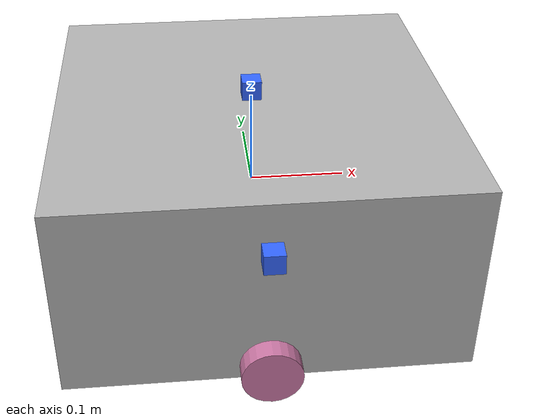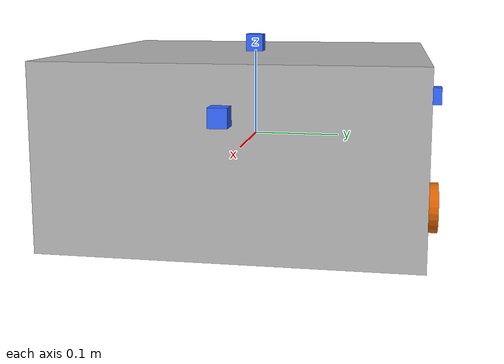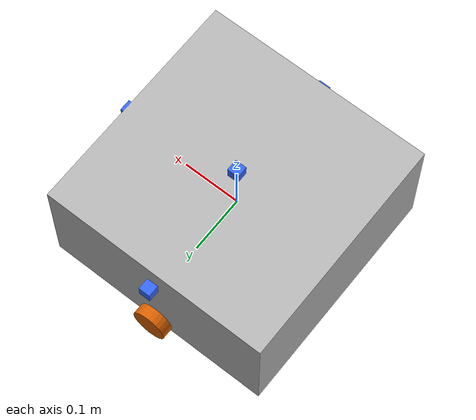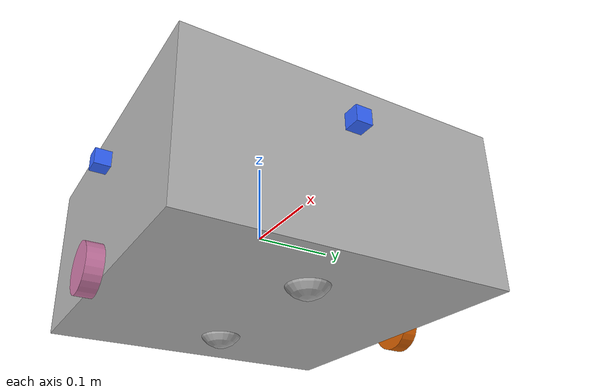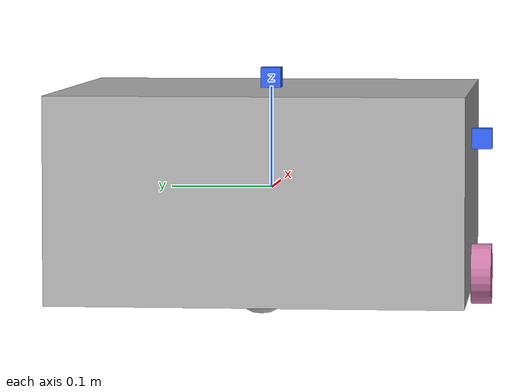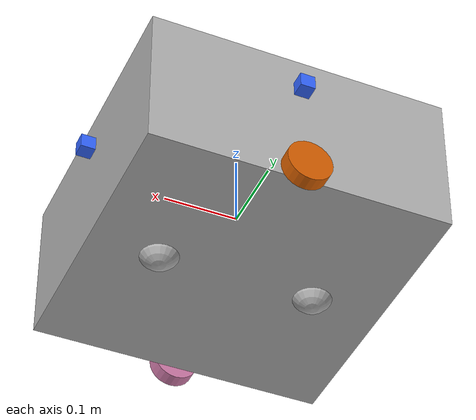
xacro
<?xml version="1.0"?>
<robot name="my_robot" xmlns:xacro="http://www.ros.org/wiki/xacro">

  <!-- Параметры -->
  <xacro:property name="base_length" value="0.4"/>
  <xacro:property name="base_width" value="0.4"/>
  <xacro:property name="base_height" value="0.2"/>

  <xacro:property name="wheel_radius" value="0.03"/>
  <xacro:property name="mass_base" value="5.00"/>
  <xacro:property name="wheel_width" value="0.02"/>
  <xacro:property name="wheel_y_offset" value="0.21"/>

  <material name="robot_blue">
    <color rgba="0.2 0.4 1 1"/>
  </material>
  <material name="robot_gray">
    <color rgba="0.7 0.7 0.7 1"/>
  </material>

  <!-- База -->
  <link name="base_link">
    <visual>
      <geometry>
        <box size="${base_length} ${base_width} ${base_height}"/>
      </geometry>
    <material name="robot_gray"/>
    </visual>
    <collision>
      <geometry>
        <box size="${base_length} ${base_width} ${base_height}"/>
      </geometry>
    </collision>

    <inertial>
      <origin xyz="0 0 0" rpy="0 0 0"/>
      <mass value="${mass_base}"/>
      <inertia
        ixx="0.0208"
        ixy="0.0"
        ixz="0.0"
        iyy="0.0283"
        iyz="0.0"
        izz="0.0417"/>
    </inertial>
  </link>

  <link name="base_footprint">
  </link>
  <joint name="base_joint" type="fixed">
    <parent link="base_link"/>
    <child link="base_footprint"/>
    <origin xyz="0.0 0.0 ${-(base_height/2 + wheel_radius/2)}" rpy="0 0 0"/>
  </joint>

  <!-- Макрос колеса -->
  <xacro:macro name="wheel" params="name y_offset">
    <link name="${name}">
      <visual>
        <geometry>
          <cylinder radius="${wheel_radius}" length="${wheel_width}"/>
        </geometry>
      </visual>

      <collision>
        <geometry>
          <cylinder radius="${wheel_radius}" length="${wheel_width}"/>
        </geometry>
      </collision>

      <inertial>
        <origin xyz="0 0 0" rpy="0 0 0"/>
        <mass value="0.2"/>
        <inertia
          ixx="0.00013"
          ixy="0.0"
          ixz="0.0"
          iyy="0.00013"
          iyz="0.0"
          izz="0.00025"/>
      </inertial>
    </link>

    <joint name="${name}_joint" type="continuous">
      <parent link="base_link"/>
      <child link="${name}"/>
      <origin xyz="0 ${y_offset} ${- base_height/2 + wheel_radius/2}" rpy="0 1.57 1.57"/>
      <axis xyz="0 0 1"/>
    </joint>
  </xacro:macro>

  <xacro:macro name="range_sensor_mount" params="name x y z roll pitch yaw topic_name">
  <link name="${name}">
    <visual>
      <geometry>
        <box size="0.02 0.02 0.02"/>
      </geometry>
      <material name="robot_blue"/>
    </visual>

    <collision>
      <geometry>
        <box size="0.02 0.02 0.02"/>
      </geometry>
    </collision>

    <inertial>
      <mass value="0.01"/>
      <inertia
        ixx="1e-6" ixy="0" ixz="0"
        iyy="1e-6" iyz="0"
        izz="1e-6"/>
    </inertial>
  </link>

  <joint name="${name}_joint" type="fixed">
    <parent link="base_link"/>
    <child link="${name}"/>
    <origin xyz="${x} ${y} ${z}" rpy="${roll} ${pitch} ${yaw}"/>
  </joint>
</xacro:macro>

  <xacro:macro name="support_wheel" params="name x y z">
    <link name="${name}">
      <visual>
        <geometry>
          <sphere radius="0.03"/>
        </geometry>
        <material name="robot_gray"/>
      </visual>

      <collision>
        <geometry>
          <sphere radius="0.03"/>
        </geometry>
      </collision>

      <inertial>
        <mass value="0.05"/>
        <inertia
          ixx="1e-5"
          ixy="0.0"
          ixz="0.0"
          iyy="1e-5"
          iyz="0.0"
          izz="1e-5"/>
      </inertial>
    </link>

    <joint name="${name}_joint" type="fixed">
      <parent link="base_link"/>
      <child link="${name}"/>
      <origin xyz="${x} ${y} ${z}" rpy="0 0 0"/>
    </joint>
  </xacro:macro>

  <!-- Sensors -->
  <xacro:range_sensor_mount name="range_front" x="0.21" y="0.0" z="0.05" roll="0" pitch="0" yaw="0" topic_name="/range_front_raw"/>
  <xacro:range_sensor_mount name="range_left"  x="0.00" y="0.21" z="0.05" roll="0" pitch="0" yaw="1.5708" topic_name="/range_left_raw"/>
  <xacro:range_sensor_mount name="range_right" x="0.00" y="-0.21" z="0.05" roll="0" pitch="0" yaw="-1.5708" topic_name="/range_right_raw"/>

  <!-- Колёса -->
  <xacro:wheel name="left_wheel" y_offset="${wheel_y_offset}"/>
  <xacro:wheel name="right_wheel" y_offset="-${wheel_y_offset}"/>

  <xacro:support_wheel name="front_support_wheel" x="${wheel_y_offset/2}" y="0" z="${- base_height/2 + wheel_radius/2}"/>
  <xacro:support_wheel name="back_support_wheel" x="${- wheel_y_offset/2}" y="0" z="${- base_height/2 + wheel_radius/2}"/>

  <gazebo>
    <plugin
        filename="gz-sim-diff-drive-system"
        name="gz::sim::systems::DiffDrive">

      <left_joint>left_wheel_joint</left_joint>
      <right_joint>right_wheel_joint</right_joint>

      <wheel_separation>0.42</wheel_separation>
      <wheel_radius>0.03</wheel_radius>

      <odom_publish_frequency>50</odom_publish_frequency>

      <topic>/cmd_vel</topic>
      <odom_topic>model/diff_drive/odometry</odom_topic>
      <tf_topic>model/diff_drive/pose</tf_topic>

      <frame_id>odom</frame_id>
      <child_frame_id>base_link</child_frame_id>

      <min_linear_velocity>-1.0</min_linear_velocity>
      <max_linear_velocity>1.0</max_linear_velocity>

      <min_angular_velocity>-2.0</min_angular_velocity>
      <max_angular_velocity>2.0</max_angular_velocity>

      <min_linear_acceleration>-1.0</min_linear_acceleration>
      <max_linear_acceleration>1.0</max_linear_acceleration>

      <min_angular_acceleration>-2.0</min_angular_acceleration>
      <max_angular_acceleration>2.0</max_angular_acceleration>
    </plugin>
    <plugin
      filename="gz-sim-joint-state-publisher-system"
      name="gz::sim::systems::JointStatePublisher">
      <topic>/world/Depot/model/diff_drive/joint_state</topic>
    </plugin>
    <plugin
      filename="gz-sim-pose-publisher-system"
      name="gz::sim::systems::PosePublisher">
      <publish_link_pose>true</publish_link_pose>
      <use_pose_vector_msg>true</use_pose_vector_msg>
      <static_publisher>true</static_publisher>
      <static_update_frequency>1</static_update_frequency>
    </plugin>
  </gazebo>

  <gazebo reference="range_front">
    <sensor name="range_front_sensor" type="gpu_lidar">
      <always_on>true</always_on>
      <visualize>true</visualize>
      <update_rate>10</update_rate>
      <topic>range_front</topic>

      <lidar>
        <scan>
          <horizontal>
            <samples>1</samples>
            <resolution>1</resolution>
            <min_angle>0.0</min_angle>
            <max_angle>0.0</max_angle>
          </horizontal>
        </scan>
        <range>
          <min>0.05</min>
          <max>15.0</max>
          <resolution>0.01</resolution>
        </range>
      </lidar>

      <plugin name="dummy" filename="dummyfile"/>
    </sensor>
  </gazebo>

  <gazebo reference="range_left">
    <sensor name="range_left_sensor" type="gpu_lidar">
      <always_on>true</always_on>
      <visualize>true</visualize>
      <update_rate>10</update_rate>
      <topic>range_left</topic>

      <lidar>
        <scan>
          <horizontal>
            <samples>1</samples>
            <resolution>1</resolution>
            <min_angle>0.0</min_angle>
            <max_angle>0.0</max_angle>
          </horizontal>
        </scan>
        <range>
          <min>0.05</min>
          <max>15.0</max>
          <resolution>0.01</resolution>
        </range>
      </lidar>

      <plugin name="dummy" filename="dummyfile"/>
    </sensor>
  </gazebo>

  <gazebo reference="range_right">
    <sensor name="range_right_sensor" type="gpu_lidar">
      <always_on>true</always_on>
      <visualize>true</visualize>
      <update_rate>10</update_rate>
      <topic>range_right</topic>

      <lidar>
        <scan>
          <horizontal>
            <samples>1</samples>
            <resolution>1</resolution>
            <min_angle>0.0</min_angle>
            <max_angle>0.0</max_angle>
          </horizontal>
        </scan>
        <range>
          <min>0.05</min>
          <max>15.0</max>
          <resolution>0.01</resolution>
        </range>
      </lidar>

      <plugin name="dummy" filename="dummyfile"/>
    </sensor>
  </gazebo>

  <xacro:macro name="lidar_sensor_mount" params="name x y z roll pitch yaw ">
    <link name="${name}">
      <visual>
        <geometry>
          <box size="0.02 0.02 0.02"/>
        </geometry>
        <material name="robot_blue"/>
      </visual>

      <collision>
        <geometry>
          <box size="0.02 0.02 0.02"/>
        </geometry>
      </collision>

      <inertial>
        <mass value="0.01"/>
        <inertia
          ixx="1e-6" ixy="0" ixz="0"
          iyy="1e-6" iyz="0"
          izz="1e-6"/>
      </inertial>
    </link>

    <joint name="${name}_joint" type="fixed">
      <parent link="base_link"/>
      <child link="${name}"/>
      <origin xyz="${x} ${y} ${z}" rpy="${roll} ${pitch} ${yaw}"/>
    </joint>
  </xacro:macro>
  <xacro:lidar_sensor_mount name="lidar_sensor" x="0.00" y="0" z="${base_height/2 + 0.01}" roll="0" pitch="0" yaw="0"/>
  <gazebo reference="lidar_sensor">
    <sensor name="range_lidar_sensor" type="gpu_lidar">
      <always_on>true</always_on>
      <visualize>true</visualize>
      <update_rate>10</update_rate>
      <topic>range_lidar</topic>

      <lidar>
        <scan>
          <horizontal>
            <samples>1000</samples>
            <resolution>1</resolution>
            <min_angle>0</min_angle>
            <max_angle>6.28</max_angle>
          </horizontal>
        </scan>
        <range>
          <min>0.05</min>
          <max>20.0</max>
          <resolution>0.01</resolution>
        </range>
      </lidar>

      <plugin name="dummy" filename="dummyfile"/>
    </sensor>
  </gazebo>
</robot>
